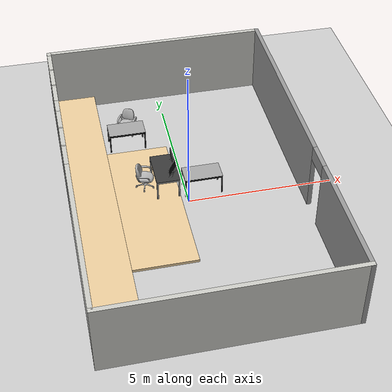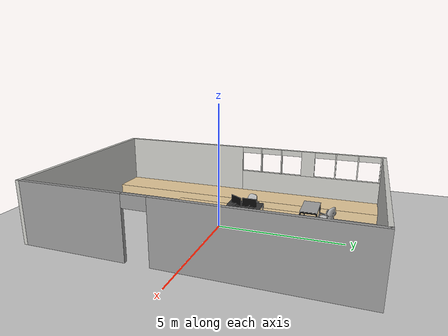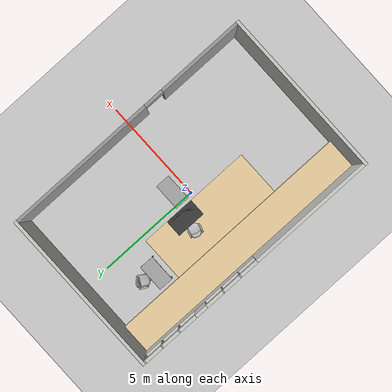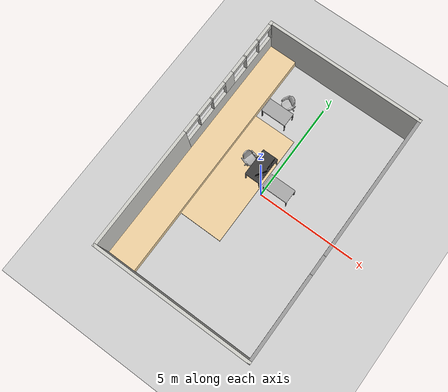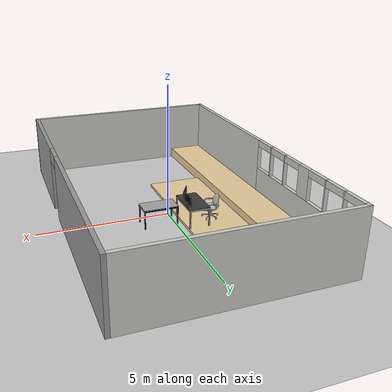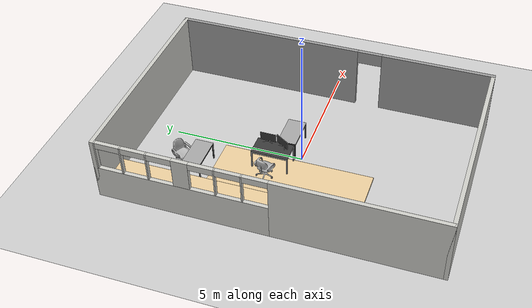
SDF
<sdf version="1.6">
 <world name="default">
  <model name="ground_plane">
   <static>1</static>
   <link name="link">
    <collision name="collision">
     <geometry><plane><normal>0 0 1</normal><size>100 100</size></plane></geometry>
     <surface><friction><ode><mu>100</mu><mu2>50</mu2></ode></friction></surface>
    </collision>
    <visual name="visual">
     <cast_shadows>0</cast_shadows>
     <geometry><plane><normal>0 0 1</normal><size>100 100</size></plane></geometry>
     <material>
      <script><uri>file://media/materials/scripts/gazebo.material</uri><name>Gazebo/Grey</name></script>
     </material>
    </visual>
   </link>
  </model>
  <model name="012">
   <pose>4e-06 0 0 0 -0 1.57079</pose>
   <link name="Wall_0">
    <collision name="Wall_0_Collision">
     <geometry><box><size>8 0.15 2.5</size></box></geometry>
     <pose>0 0 1.25 0 -0 0</pose>
    </collision>
    <visual name="Wall_0_Visual">
     <pose>0 0 1.25 0 -0 0</pose>
     <geometry><box><size>8 0.15 2.5</size></box></geometry>
     <material>
      <script><uri>file://media/materials/scripts/gazebo.material</uri><name>Gazebo/CeilingTiled</name></script>
      <ambient>1 1 1 1</ambient>
     </material>
    </visual>
    <pose>-6.175 0 0 0 -0 1.5708</pose>
   </link>
   <link name="Wall_1">
    <pose>0 3.925 0 0 -0 0</pose>
    <visual name="Wall_1_Visual_0">
     <pose>-3.19976 0 1.25 0 -0 0</pose>
     <geometry><box><size>6.10047 0.15 2.5</size></box></geometry>
     <material>
      <script><uri>file://media/materials/scripts/gazebo.material</uri><name>Gazebo/CeilingTiled</name></script>
      <ambient>1 1 1 1</ambient>
     </material>
    </visual>
    <collision name="Wall_1_Collision_0">
     <geometry><box><size>6.10047 0.15 2.5</size></box></geometry>
     <pose>-3.19976 0 1.25 0 -0 0</pose>
    </collision>
    <visual name="Wall_1_Visual_1">
     <pose>3.05024 0 0.675 0 -0 0</pose>
     <geometry><box><size>6.39953 0.15 1.35</size></box></geometry>
     <material>
      <script><uri>file://media/materials/scripts/gazebo.material</uri><name>Gazebo/CeilingTiled</name></script>
      <ambient>1 1 1 1</ambient>
     </material>
    </visual>
    <collision name="Wall_1_Collision_1">
     <geometry><box><size>6.39953 0.15 1.35</size></box></geometry>
     <pose>3.05024 0 0.675 0 -0 0</pose>
    </collision>
    <visual name="Wall_1_Visual_2">
     <pose>0.775327 0 1.925 0 -0 0</pose>
     <geometry><box><size>0.049707 0.15 1.15</size></box></geometry>
     <material>
      <script><uri>file://media/materials/scripts/gazebo.material</uri><name>Gazebo/CeilingTiled</name></script>
      <ambient>1 1 1 1</ambient>
     </material>
    </visual>
    <collision name="Wall_1_Collision_2">
     <geometry><box><size>0.049707 0.15 1.15</size></box></geometry>
     <pose>0.775327 0 1.925 0 -0 0</pose>
    </collision>
    <visual name="Wall_1_Visual_3">
     <pose>1.7249 0 1.925 0 -0 0</pose>
     <geometry><box><size>0.049436 0.15 1.15</size></box></geometry>
     <material>
      <script><uri>file://media/materials/scripts/gazebo.material</uri><name>Gazebo/CeilingTiled</name></script>
      <ambient>1 1 1 1</ambient>
     </material>
    </visual>
    <collision name="Wall_1_Collision_3">
     <geometry><box><size>0.049436 0.15 1.15</size></box></geometry>
     <pose>1.7249 0 1.925 0 -0 0</pose>
    </collision>
    <visual name="Wall_1_Visual_4">
     <pose>2.9496 0 1.925 0 -0 0</pose>
     <geometry><box><size>0.599959 0.15 1.15</size></box></geometry>
     <material>
      <script><uri>file://media/materials/scripts/gazebo.material</uri><name>Gazebo/CeilingTiled</name></script>
      <ambient>1 1 1 1</ambient>
     </material>
    </visual>
    <collision name="Wall_1_Collision_4">
     <geometry><box><size>0.599959 0.15 1.15</size></box></geometry>
     <pose>2.9496 0 1.925 0 -0 0</pose>
    </collision>
    <visual name="Wall_1_Visual_5">
     <pose>4.17483 0 1.925 0 -0 0</pose>
     <geometry><box><size>0.050519 0.15 1.15</size></box></geometry>
     <material>
      <script><uri>file://media/materials/scripts/gazebo.material</uri><name>Gazebo/CeilingTiled</name></script>
      <ambient>1 1 1 1</ambient>
     </material>
    </visual>
    <collision name="Wall_1_Collision_5">
     <geometry><box><size>0.050519 0.15 1.15</size></box></geometry>
     <pose>4.17483 0 1.925 0 -0 0</pose>
    </collision>
    <visual name="Wall_1_Visual_6">
     <pose>5.12512 0 1.925 0 -0 0</pose>
     <geometry><box><size>0.050049 0.15 1.15</size></box></geometry>
     <material>
      <script><uri>file://media/materials/scripts/gazebo.material</uri><name>Gazebo/CeilingTiled</name></script>
      <ambient>1 1 1 1</ambient>
     </material>
    </visual>
    <collision name="Wall_1_Collision_6">
     <geometry><box><size>0.050049 0.15 1.15</size></box></geometry>
     <pose>5.12512 0 1.925 0 -0 0</pose>
    </collision>
    <visual name="Wall_1_Visual_7">
     <pose>6.15007 0 1.925 0 -0 0</pose>
     <geometry><box><size>0.199856 0.15 1.15</size></box></geometry>
     <material>
      <script><uri>file://media/materials/scripts/gazebo.material</uri><name>Gazebo/CeilingTiled</name></script>
      <ambient>1 1 1 1</ambient>
     </material>
    </visual>
    <collision name="Wall_1_Collision_7">
     <geometry><box><size>0.199856 0.15 1.15</size></box></geometry>
     <pose>6.15007 0 1.925 0 -0 0</pose>
    </collision>
    <visual name="Wall_1_Visual_8">
     <pose>0.300473 0 2.375 0 -0 0</pose>
     <geometry><box><size>0.9 0.15 0.25</size></box></geometry>
     <material>
      <script><uri>file://media/materials/scripts/gazebo.material</uri><name>Gazebo/CeilingTiled</name></script>
      <ambient>1 1 1 1</ambient>
     </material>
    </visual>
    <collision name="Wall_1_Collision_8">
     <geometry><box><size>0.9 0.15 0.25</size></box></geometry>
     <pose>0.300473 0 2.375 0 -0 0</pose>
    </collision>
    <visual name="Wall_1_Visual_9">
     <pose>1.25018 0 2.375 0 -0 0</pose>
     <geometry><box><size>0.9 0.15 0.25</size></box></geometry>
     <material>
      <script><uri>file://media/materials/scripts/gazebo.material</uri><name>Gazebo/CeilingTiled</name></script>
      <ambient>1 1 1 1</ambient>
     </material>
    </visual>
    <collision name="Wall_1_Collision_9">
     <geometry><box><size>0.9 0.15 0.25</size></box></geometry>
     <pose>1.25018 0 2.375 0 -0 0</pose>
    </collision>
    <visual name="Wall_1_Visual_10">
     <pose>2.19962 0 2.375 0 -0 0</pose>
     <geometry><box><size>0.9 0.15 0.25</size></box></geometry>
     <material>
      <script><uri>file://media/materials/scripts/gazebo.material</uri><name>Gazebo/CeilingTiled</name></script>
      <ambient>1 1 1 1</ambient>
     </material>
    </visual>
    <collision name="Wall_1_Collision_10">
     <geometry><box><size>0.9 0.15 0.25</size></box></geometry>
     <pose>2.19962 0 2.375 0 -0 0</pose>
    </collision>
    <visual name="Wall_1_Visual_11">
     <pose>3.69958 0 2.375 0 -0 0</pose>
     <geometry><box><size>0.9 0.15 0.25</size></box></geometry>
     <material>
      <script><uri>file://media/materials/scripts/gazebo.material</uri><name>Gazebo/CeilingTiled</name></script>
      <ambient>1 1 1 1</ambient>
     </material>
    </visual>
    <collision name="Wall_1_Collision_11">
     <geometry><box><size>0.9 0.15 0.25</size></box></geometry>
     <pose>3.69958 0 2.375 0 -0 0</pose>
    </collision>
    <visual name="Wall_1_Visual_12">
     <pose>4.65009 0 2.375 0 -0 0</pose>
     <geometry><box><size>0.9 0.15 0.25</size></box></geometry>
     <material>
      <script><uri>file://media/materials/scripts/gazebo.material</uri><name>Gazebo/CeilingTiled</name></script>
      <ambient>1 1 1 1</ambient>
     </material>
    </visual>
    <collision name="Wall_1_Collision_12">
     <geometry><box><size>0.9 0.15 0.25</size></box></geometry>
     <pose>4.65009 0 2.375 0 -0 0</pose>
    </collision>
    <visual name="Wall_1_Visual_13">
     <pose>5.60014 0 2.375 0 -0 0</pose>
     <geometry><box><size>0.9 0.15 0.25</size></box></geometry>
     <material>
      <script><uri>file://media/materials/scripts/gazebo.material</uri><name>Gazebo/CeilingTiled</name></script>
      <ambient>1 1 1 1</ambient>
     </material>
    </visual>
    <collision name="Wall_1_Collision_13">
     <geometry><box><size>0.9 0.15 0.25</size></box></geometry>
     <pose>5.60014 0 2.375 0 -0 0</pose>
    </collision>
   </link>
   <link name="Wall_2">
    <collision name="Wall_2_Collision">
     <geometry><box><size>8 0.15 2.5</size></box></geometry>
     <pose>0 0 1.25 0 -0 0</pose>
    </collision>
    <visual name="Wall_2_Visual">
     <pose>0 0 1.25 0 -0 0</pose>
     <geometry><box><size>8 0.15 2.5</size></box></geometry>
     <material>
      <script><uri>file://media/materials/scripts/gazebo.material</uri><name>Gazebo/CeilingTiled</name></script>
      <ambient>1 1 1 1</ambient>
     </material>
    </visual>
    <pose>6.175 0 0 0 0 -1.5708</pose>
   </link>
   <link name="Wall_3">
    <pose>0 -3.925 0 0 -0 3.14159</pose>
    <visual name="Wall_3_Visual_0">
     <pose>-2.6248 0 1.25 0 -0 0</pose>
     <geometry><box><size>7.25041 0.15 2.5</size></box></geometry>
     <material>
      <script><uri>file://media/materials/scripts/gazebo.material</uri><name>Gazebo/Grey</name></script>
      <ambient>1 1 1 1</ambient>
     </material>
    </visual>
    <collision name="Wall_3_Collision_0">
     <geometry><box><size>7.25041 0.15 2.5</size></box></geometry>
     <pose>-2.6248 0 1.25 0 -0 0</pose>
    </collision>
    <visual name="Wall_3_Visual_1">
     <pose>4.1002 0 1.25 0 -0 0</pose>
     <geometry><box><size>4.29959 0.15 2.5</size></box></geometry>
     <material>
      <script><uri>file://media/materials/scripts/gazebo.material</uri><name>Gazebo/Grey</name></script>
      <ambient>1 1 1 1</ambient>
     </material>
    </visual>
    <collision name="Wall_3_Collision_1">
     <geometry><box><size>4.29959 0.15 2.5</size></box></geometry>
     <pose>4.1002 0 1.25 0 -0 0</pose>
    </collision>
    <visual name="Wall_3_Visual_2">
     <pose>1.47541 0 2.25 0 -0 0</pose>
     <geometry><box><size>0.95 0.15 0.5</size></box></geometry>
     <material>
      <script><uri>file://media/materials/scripts/gazebo.material</uri><name>Gazebo/Grey</name></script>
      <ambient>1 1 1 1</ambient>
     </material>
    </visual>
    <collision name="Wall_3_Collision_2">
     <geometry><box><size>0.95 0.15 0.5</size></box></geometry>
     <pose>1.47541 0 2.25 0 -0 0</pose>
    </collision>
   </link>
   <static>1</static>
  </model>
  <model name="012_step_back">
   <pose>-3.15276 0 0 0 -0 1.5708</pose>
   <link name="Stairs_5">
    <visual name="Stairs_5_Visual_0">
     <pose>0 0 0.2 0 -0 0</pose>
     <geometry><box><size>12.387 1.451 0.4</size></box></geometry>
     <material>
      <script><uri>file://media/materials/scripts/gazebo.material</uri><name>Gazebo/Grey</name></script>
      <ambient>0.921569 0.807843 0.615686 1</ambient>
     </material>
    </visual>
    <collision name="Stairs_5_Collision_0">
     <geometry><box><size>12.387 1.451 0.4</size></box></geometry>
     <pose>0 0 0.2 0 -0 0</pose>
    </collision>
   </link>
   <static>1</static>
  </model>
  <model name="012_step_central">
   <pose>-1.40245 0.05011 0 0 -0 1.5708</pose>
   <link name="Stairs_3">
    <visual name="Stairs_3_Visual_0">
     <pose>0 0 0.05 0 -0 0</pose>
     <geometry><box><size>5.735 2.335 0.1</size></box></geometry>
     <material>
      <script><uri>file://media/materials/scripts/gazebo.material</uri><name>Gazebo/Grey</name></script>
      <ambient>0.921569 0.807843 0.615686 1</ambient>
     </material>
    </visual>
    <collision name="Stairs_3_Collision_0">
     <geometry><box><size>5.735 2.335 0.1</size></box></geometry>
     <pose>0 0 0.05 0 -0 0</pose>
    </collision>
   </link>
   <static>1</static>
  </model>
  <model name="rectangle_table_clone">
   <static>1</static>
   <link name="rectangle_table">
    <collision name="surface">
     <pose>0 0 0.7 0 -0 0</pose>
     <geometry><box><size>1.4 0.8 0.079</size></box></geometry>
     <surface><friction><ode><mu>0.6</mu><mu2>0.6</mu2></ode></friction></surface>
    </collision>
    <collision name="left_front_leg">
     <pose>-0.6764 0.3733 0.3305 0 -0 0</pose>
     <geometry><box><size>0.0467 0.0534 0.661</size></box></geometry>
    </collision>
    <collision name="right_front_leg">
     <pose>0.6764 0.3733 0.3305 0 -0 0</pose>
     <geometry><box><size>0.0467 0.0534 0.661</size></box></geometry>
    </collision>
    <collision name="left_back_leg">
     <pose>-0.6764 -0.3733 0.3305 0 -0 0</pose>
     <geometry><box><size>0.0467 0.0534 0.661</size></box></geometry>
    </collision>
    <collision name="right_back_leg">
     <pose>0.6764 -0.3733 0.3305 0 -0 0</pose>
     <geometry><box><size>0.0467 0.0534 0.661</size></box></geometry>
    </collision>
    <visual name="rectangle_table_mesh">
     <geometry><mesh><uri>model://rectangle_table/meshes/model.dae</uri><scale>1 1 1</scale></mesh></geometry>
    </visual>
   </link>
   <pose>-0.647989 0.90469 0.1 0 0 -1.5708</pose>
  </model>
  <model name="swivel_chair_clone">
   <static>1</static>
   <link name="swivel_chair">
    <collision name="swivel_chair">
     <geometry><mesh><uri>model://swivel_chair/meshes/model.dae</uri><scale>1 1 1</scale></mesh></geometry>
    </collision>
    <visual name="swivel_chair_mesh">
     <geometry><mesh><uri>model://swivel_chair/meshes/model.dae</uri><scale>1 1 1</scale></mesh></geometry>
     <material>
      <script>
       <uri>model://swivel_chair/materials/scripts</uri>
       <uri>model://swivel_chair/materials/textures</uri>
       <name>Swivel_chair/Fabric</name>
      </script>
     </material>
    </visual>
   </link>
   <pose>-1.39111 0.969642 0.1 0 -0 1.30118</pose>
  </model>
  <model name="desk_clone">
   <static>1</static>
   <link name="desk">
    <collision name="surface">
     <pose>0 0 0.7 0 -0 0</pose>
     <geometry><box><size>0.7 1.3 0.08</size></box></geometry>
     <surface><friction><ode><mu>0.6</mu><mu2>0.6</mu2></ode></friction></surface>
    </collision>
    <collision name="left_front_leg">
     <pose>0.3283 0.6266 0.33 0 -0 0</pose>
     <geometry><box><size>0.0434 0.0467 0.66</size></box></geometry>
    </collision>
    <collision name="right_front_leg">
     <pose>0.3283 -0.6266 0.33 0 -0 0</pose>
     <geometry><box><size>0.0434 0.0467 0.66</size></box></geometry>
    </collision>
    <collision name="left_back_leg">
     <pose>-0.3283 0.6266 0.33 0 -0 0</pose>
     <geometry><box><size>0.0434 0.0467 0.66</size></box></geometry>
    </collision>
    <collision name="right_back_leg">
     <pose>-0.3283 -0.6266 0.33 0 -0 0</pose>
     <geometry><box><size>0.0434 0.0467 0.66</size></box></geometry>
    </collision>
    <visual name="desk_mesh">
     <geometry><mesh><uri>model://desk/meshes/model.dae</uri><scale>1 1 1</scale></mesh></geometry>
    </visual>
   </link>
   <pose>0.572261 0.56534 0 0 0 -1.5708</pose>
  </model>
  <model name="desk_clone_clone_clone_clone">
   <static>1</static>
   <link name="desk">
    <collision name="surface">
     <pose>0 0 0.7 0 -0 0</pose>
     <geometry><box><size>0.7 1.3 0.08</size></box></geometry>
     <surface><friction><ode><mu>0.6</mu><mu2>0.6</mu2></ode></friction></surface>
    </collision>
    <collision name="left_front_leg">
     <pose>0.3283 0.6266 0.33 0 -0 0</pose>
     <geometry><box><size>0.0434 0.0467 0.66</size></box></geometry>
    </collision>
    <collision name="right_front_leg">
     <pose>0.3283 -0.6266 0.33 0 -0 0</pose>
     <geometry><box><size>0.0434 0.0467 0.66</size></box></geometry>
    </collision>
    <collision name="left_back_leg">
     <pose>-0.3283 0.6266 0.33 0 -0 0</pose>
     <geometry><box><size>0.0434 0.0467 0.66</size></box></geometry>
    </collision>
    <collision name="right_back_leg">
     <pose>-0.3283 -0.6266 0.33 0 -0 0</pose>
     <geometry><box><size>0.0434 0.0467 0.66</size></box></geometry>
    </collision>
    <visual name="desk_mesh">
     <geometry><mesh><uri>model://desk/meshes/model.dae</uri><scale>1 1 1</scale></mesh></geometry>
    </visual>
   </link>
   <pose>-1.58558 3.46075 0 0 0 -1.5708</pose>
  </model>
  <model name="swivel_chair_clone_0_clone_2">
   <static>1</static>
   <link name="swivel_chair">
    <collision name="swivel_chair">
     <geometry><mesh><uri>model://swivel_chair/meshes/model.dae</uri><scale>1 1 1</scale></mesh></geometry>
    </collision>
    <visual name="swivel_chair_mesh">
     <geometry><mesh><uri>model://swivel_chair/meshes/model.dae</uri><scale>1 1 1</scale></mesh></geometry>
     <material>
      <script>
       <uri>model://swivel_chair/materials/scripts</uri>
       <uri>model://swivel_chair/materials/textures</uri>
       <name>Swivel_chair/Fabric</name>
      </script>
     </material>
    </visual>
   </link>
   <pose>-1.4345 4.20237 0 0 0 -0.5</pose>
  </model>
  <model name="tv_clone_0">
   <static>1</static>
   <link name="tv">
    <collision name="tv_upper">
     <pose>0 0 0.26 0 -0 0</pose>
     <geometry><box><size>0.582 0.032 0.28</size></box></geometry>
    </collision>
    <collision name="tv_lower">
     <pose>0 0 0.06 0 -0 0</pose>
     <geometry><box><size>0.58 0.16 0.12</size></box></geometry>
    </collision>
    <visual name="tv_mesh">
     <geometry><mesh><uri>model://tv/meshes/model.dae</uri><scale>1 1 1</scale></mesh></geometry>
    </visual>
   </link>
   <pose>-0.342273 1.17325 0.84 0 -0 1.5708</pose>
  </model>
  <model name="tv_clone_clone">
   <static>1</static>
   <link name="tv">
    <collision name="tv_upper">
     <pose>0 0 0.26 0 -0 0</pose>
     <geometry><box><size>0.582 0.032 0.28</size></box></geometry>
    </collision>
    <collision name="tv_lower">
     <pose>0 0 0.06 0 -0 0</pose>
     <geometry><box><size>0.58 0.16 0.12</size></box></geometry>
    </collision>
    <visual name="tv_mesh">
     <geometry><mesh><uri>model://tv/meshes/model.dae</uri><scale>1 1 1</scale></mesh></geometry>
    </visual>
   </link>
   <pose>-0.448122 0.593993 0.84 0 -0 1</pose>
  </model>
 </world>
</sdf>
